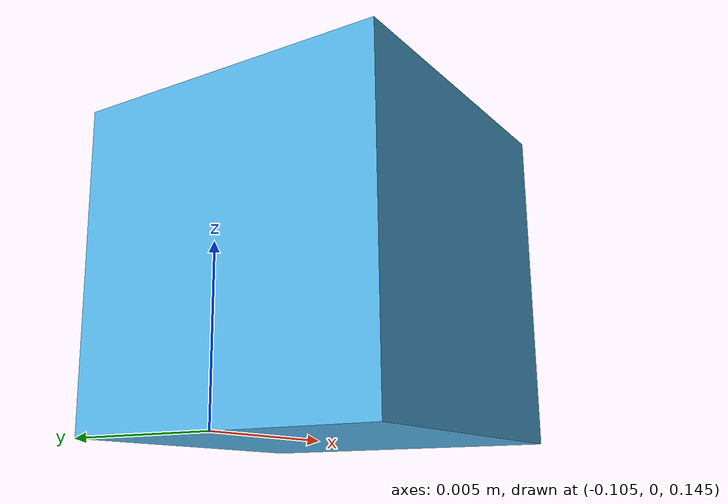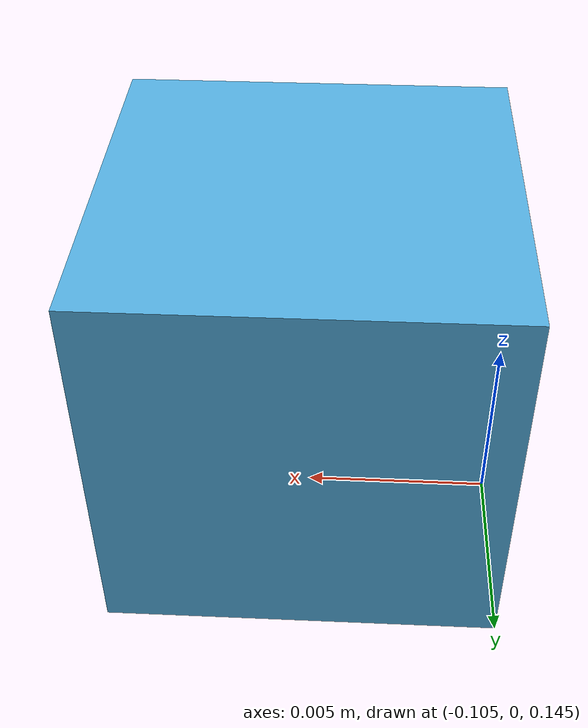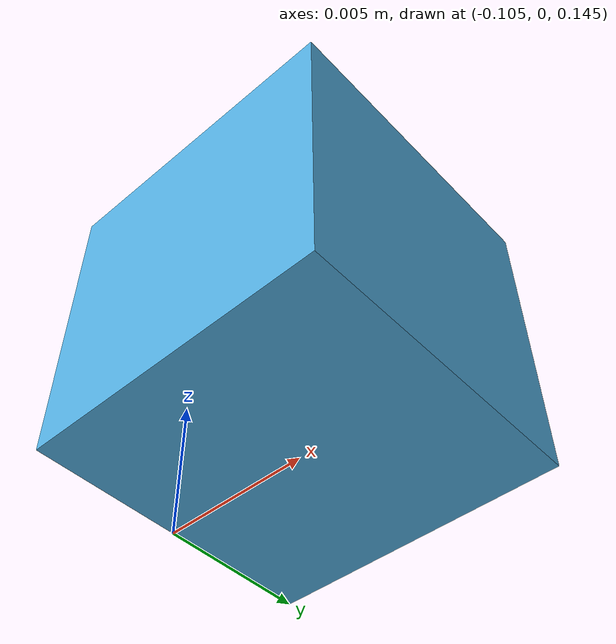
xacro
<?xml version="1.0" encoding="UTF-8"?>

<robot xmlns:xacro="http://www.ros.org/wiki/xacro" name="fixed_camera">
  <xacro:include filename="$(find gazebo_description)/urdf/depth.xacro" />

  <link name="world" />
  <link name="fixed_camera_link">
    <visual>
      <geometry>
	<box size="0.01 0.01 0.01" />
	<origin xyz="0 0 0.0" rpy="0 0 0" />
      </geometry>
    </visual>
    <inertial>
      <mass value="1" />
      <inertia ixx="1" iyy="1" izz="1" ixy="0.0" ixz="0.0" iyz="0.0" />
    </inertial>
  </link>
  <link name="link_2"></link>

  <xacro:camera_gazebo_sensor xyz="0 0 0" rpy="0.0 0.0 0.0"
  			      parent="link_2"
  			      sensor_name="fixed_camera" />

  <joint name="fixed_joint" type="fixed">
    <parent link="world" />
    <child link="fixed_camera_link" />
    <origin xyz="-0.1 0 0.15" rpy="0 0 0" />
  </joint>
  <joint name="fixed_joint2" type="fixed">
    <parent link="fixed_camera_link" />
    <child link="link_2" />
    <origin xyz="0.05 0 0" rpy="0 0 0" />
  </joint>
</robot>

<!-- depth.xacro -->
<robot xmlns:xacro="http://www.ros.org/wiki/xacro" name="camera">
  <xacro:macro name="camera_gazebo_sensor" params="xyz rpy parent sensor_name">

    <!-- joint/link data -->
    <!-- You can modify this to give the camera actual geometry -->
    <link name="camera_link"></link>
    <link name="${sensor_name}_optical_link"></link>

    <joint name="robot_camera_joint" type="fixed">
      <origin xyz="${xyz}" rpy="${rpy}" />
      <parent link="${parent}" />
      <child link="camera_link" />
    </joint>
    <joint name="camera_optical_joint" type="fixed">
      <origin xyz="0 0 0" rpy="-1.57 0 -1.57" />
      <parent link="camera_link" />
      <child link="${sensor_name}_optical_link" />
    </joint>

    <!-- Sensor -->
    <gazebo reference="camera_link">

      <sensor type="depth" name="${sensor_name}">
	<always_on>1</always_on>
	<visualize>true</visualize>
	<update_rate>20</update_rate>
	<camera>
	  <horizontal_fov>1.047198</horizontal_fov>
	  <image>
	    <width>640</width>
	    <height>480</height>
	    <format>B8G8R8</format>  <!--Changed format since channels were inverted, to go back, change to R8G8B8-->
	  </image>
	  <clip>
	    <near>0.05</near>
	    <far>3</far>
	  </clip>
	</camera>

	<plugin name="camera_controller" filename="libgazebo_ros_openni_kinect.so">
	  <baseline>0.2</baseline>
	  <alwaysOn>true</alwaysOn>
	  <updateRate>0.0</updateRate>
	  <cameraName>/${sensor_name}</cameraName>
	  <imageTopicName>/${sensor_name}/depth/image_raw</imageTopicName>
	  <cameraInfoTopicName>/${sensor_name}/depth/camera_info</cameraInfoTopicName>
	  <depthImageTopicName>/${sensor_name}/depth/image_raw</depthImageTopicName>
	  <depthImageInfoTopicName>/${sensor_name}/depth/camera_info</depthImageInfoTopicName>
	  <pointCloudTopicName>/${sensor_name}/depth/points</pointCloudTopicName>
	  <frameName>${sensor_name}_optical_link</frameName>
	  <pointCloudCutoff>0.5</pointCloudCutoff>
	  <pointCloudCutoffMax>3</pointCloudCutoffMax>
	  <distortionK1>0</distortionK1>
	  <distortionK2>0</distortionK2>
	  <distortionK3>0</distortionK3>
	  <distortionT1>0</distortionT1>
	  <distortionT2>0</distortionT2>
	  <CxPrime>0</CxPrime>
	  <Cx>0</Cx>
	  <Cy>0</Cy>
	  <focalLength>0</focalLength>
	  <hackBaseline>0</hackBaseline>
	</plugin>
      </sensor>
    </gazebo>

  </xacro:macro>
</robot>
